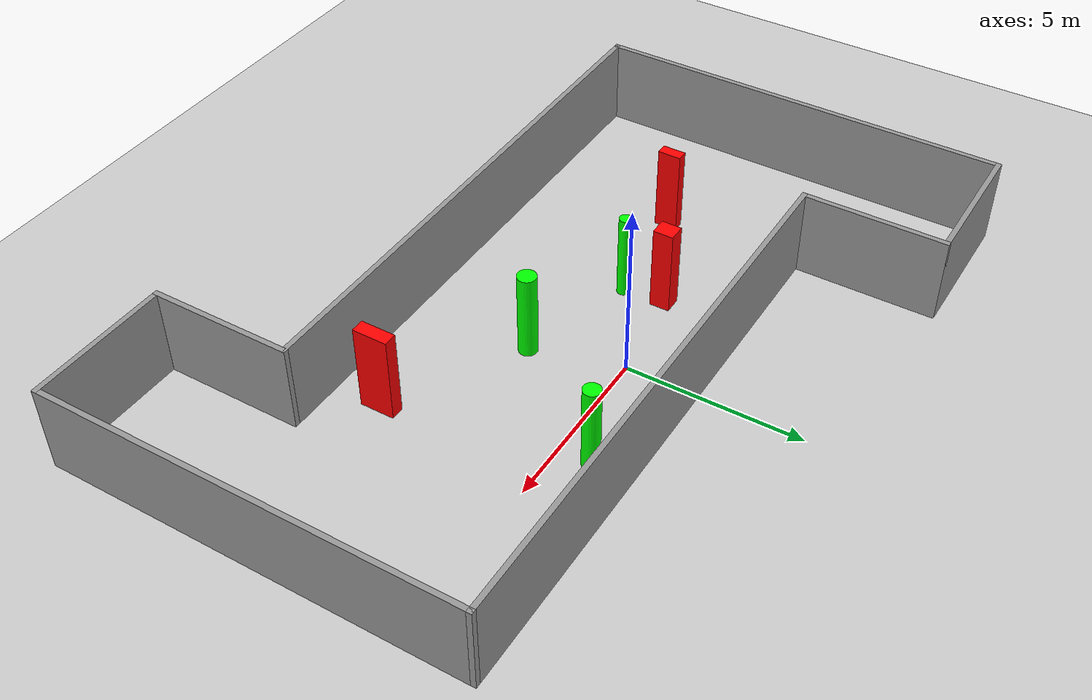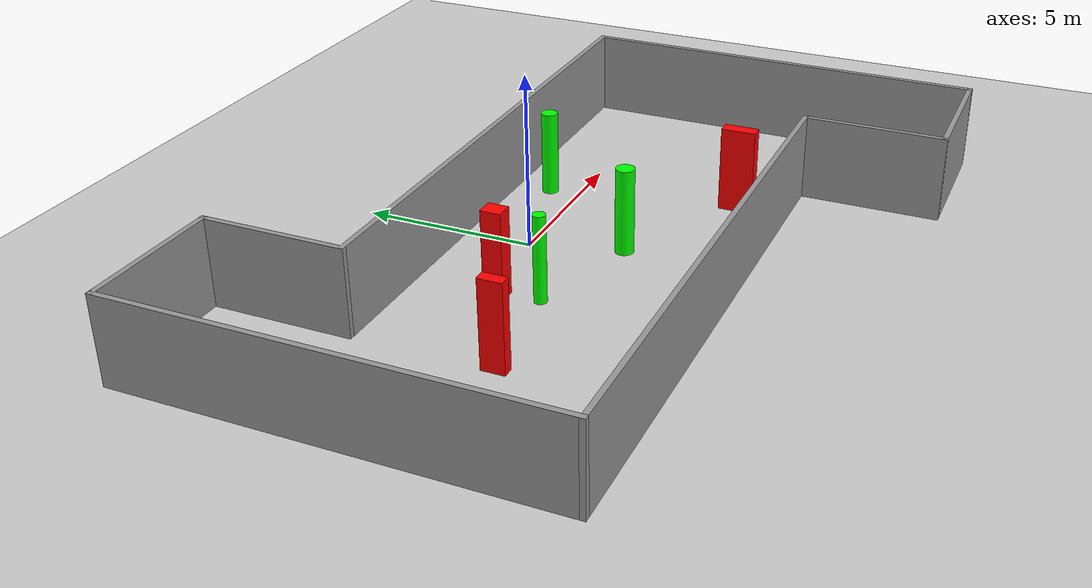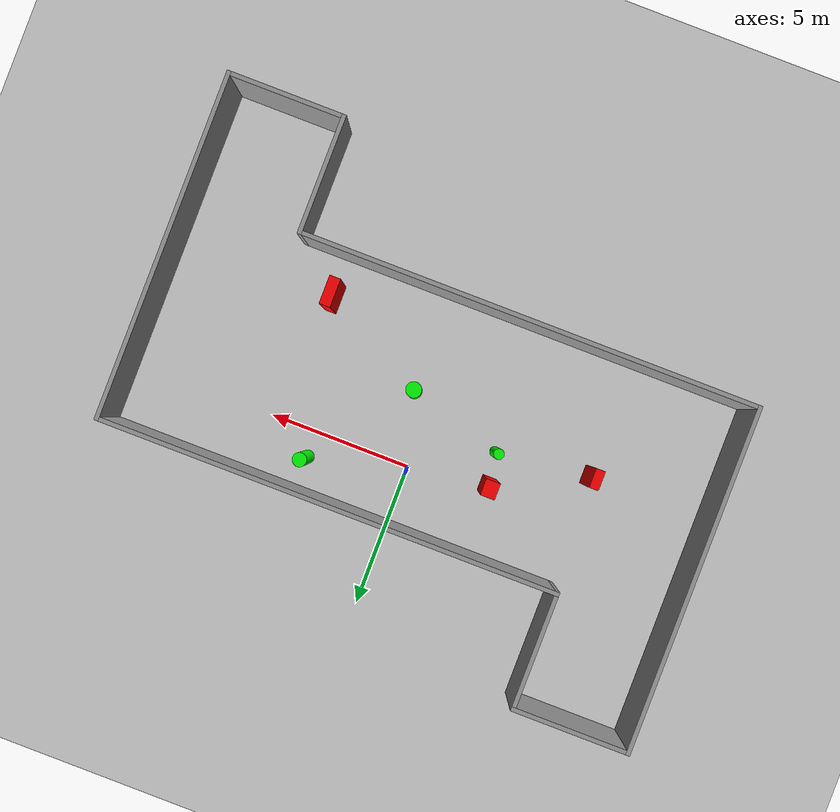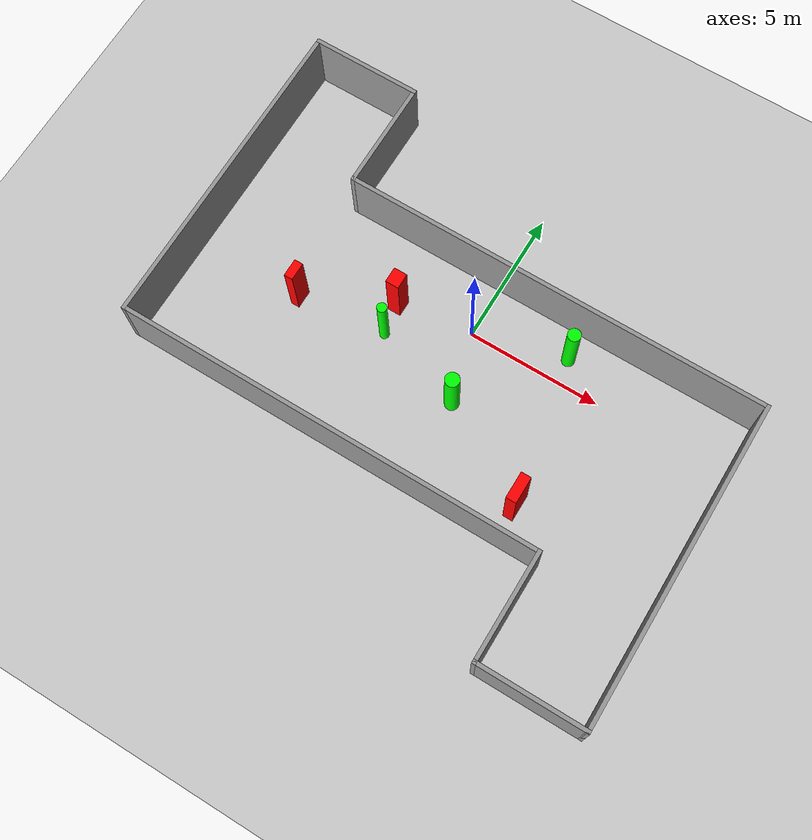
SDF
<sdf version="1.7">
 <world name="default">
  <light name="sun" type="directional">
   <pose>0 0 10 0 -0 0</pose>
   <diffuse>0.8 0.8 0.8 1</diffuse>
   <specular>0.2 0.2 0.2 1</specular>
   <attenuation>
    <range>1000</range>
    <constant>0.9</constant>
    <linear>0.01</linear>
    <quadratic>0.001</quadratic>
   </attenuation>
   <direction>-0.5 0.1 -0.9</direction>
   <spot><inner_angle>0</inner_angle><outer_angle>0</outer_angle><falloff>0</falloff></spot>
  </light>
  <model name="ground_plane">
   <static>1</static>
   <link name="link">
    <collision name="collision">
     <geometry><plane><normal>0 0 1</normal><size>100 100</size></plane></geometry>
     <surface>
      <contact><collide_bitmask>65535</collide_bitmask></contact>
      <friction><ode><mu>100</mu><mu2>50</mu2></ode></friction>
     </surface>
    </collision>
    <visual name="visual">
     <cast_shadows>0</cast_shadows>
     <geometry><plane><normal>0 0 1</normal><size>100 100</size></plane></geometry>
     <material>
      <script><uri>file://media/materials/scripts/gazebo.material</uri><name>Gazebo/Grey</name></script>
     </material>
    </visual>
   </link>
  </model>
  <gravity>0 0 -9.8</gravity>
  <magnetic_field>6e-06 2.3e-05 -4.2e-05</magnetic_field>
  <atmosphere type="adiabatic"/>
  <physics type="ode">
   <max_step_size>0.001</max_step_size>
   <real_time_factor>1</real_time_factor>
   <real_time_update_rate>1000</real_time_update_rate>
  </physics>
  <scene><ambient>0.4 0.4 0.4 1</ambient><background>0.7 0.7 0.7 1</background><shadows>1</shadows></scene>
  <spherical_coordinates>
   <surface_model>EARTH_WGS84</surface_model>
   <latitude_deg>0</latitude_deg>
   <longitude_deg>0</longitude_deg>
   <elevation>0</elevation>
   <heading_deg>0</heading_deg>
  </spherical_coordinates>
  <model name="my_base_walls">
   <link name="Wall_13">
    <collision name="Wall_13_Collision">
     <geometry><box><size>12.15 0.15 2.5</size></box></geometry>
     <pose>0 0 1.25 0 -0 0</pose>
    </collision>
    <visual name="Wall_13_Visual">
     <pose>0 0 1.25 0 -0 0</pose>
     <geometry><box><size>12.15 0.15 2.5</size></box></geometry>
     <material>
      <script><uri>file://media/materials/scripts/gazebo.material</uri><name>Gazebo/Grey</name></script>
      <ambient>1 1 1 1</ambient>
     </material>
     <meta><layer>0</layer></meta>
    </visual>
    <pose>10 -2 0 0 -0 1.5708</pose>
   </link>
   <link name="Wall_15">
    <collision name="Wall_15_Collision">
     <geometry><box><size>16.15 0.15 2.5</size></box></geometry>
     <pose>0 0 1.25 0 -0 0</pose>
    </collision>
    <visual name="Wall_15_Visual">
     <pose>0 0 1.25 0 -0 0</pose>
     <geometry><box><size>16.15 0.15 2.5</size></box></geometry>
     <material>
      <script><uri>file://media/materials/scripts/gazebo.material</uri><name>Gazebo/Grey</name></script>
      <ambient>1 1 1 1</ambient>
     </material>
     <meta><layer>0</layer></meta>
    </visual>
    <pose>2 4 0 0 -0 3.14159</pose>
   </link>
   <link name="Wall_17">
    <collision name="Wall_17_Collision">
     <geometry><box><size>4.15 0.15 2.5</size></box></geometry>
     <pose>0 0 1.25 0 -0 0</pose>
    </collision>
    <visual name="Wall_17_Visual">
     <pose>0 0 1.25 0 -0 0</pose>
     <geometry><box><size>4.15 0.15 2.5</size></box></geometry>
     <material>
      <script><uri>file://media/materials/scripts/gazebo.material</uri><name>Gazebo/Grey</name></script>
      <ambient>1 1 1 1</ambient>
     </material>
     <meta><layer>0</layer></meta>
    </visual>
    <pose>6 -6 0 0 -0 -1.5708</pose>
   </link>
   <link name="Wall_19">
    <collision name="Wall_19_Collision">
     <geometry><box><size>12.15 0.15 2.5</size></box></geometry>
     <pose>0 0 1.25 0 -0 0</pose>
    </collision>
    <visual name="Wall_19_Visual">
     <pose>0 0 1.25 0 -0 0</pose>
     <geometry><box><size>12.15 0.15 2.5</size></box></geometry>
     <material>
      <script><uri>file://media/materials/scripts/gazebo.material</uri><name>Gazebo/Grey</name></script>
      <ambient>1 1 1 1</ambient>
     </material>
     <meta><layer>0</layer></meta>
    </visual>
    <pose>-10 2 0 0 -0 1.5708</pose>
   </link>
   <link name="Wall_21">
    <collision name="Wall_21_Collision">
     <geometry><box><size>4.15 0.15 2.5</size></box></geometry>
     <pose>0 0 1.25 0 -0 0</pose>
    </collision>
    <visual name="Wall_21_Visual">
     <pose>0 0 1.25 0 -0 0</pose>
     <geometry><box><size>4.15 0.15 2.5</size></box></geometry>
     <material>
      <script><uri>file://media/materials/scripts/gazebo.material</uri><name>Gazebo/Grey</name></script>
      <ambient>1 1 1 1</ambient>
     </material>
     <meta><layer>0</layer></meta>
    </visual>
    <pose>-8 8 0 0 -0 0</pose>
   </link>
   <link name="Wall_23">
    <collision name="Wall_23_Collision">
     <geometry><box><size>4.15 0.15 2.5</size></box></geometry>
     <pose>0 0 1.25 0 -0 0</pose>
    </collision>
    <visual name="Wall_23_Visual">
     <pose>0 0 1.25 0 -0 0</pose>
     <geometry><box><size>4.15 0.15 2.5</size></box></geometry>
     <material>
      <script><uri>file://media/materials/scripts/gazebo.material</uri><name>Gazebo/Grey</name></script>
      <ambient>1 1 1 1</ambient>
     </material>
     <meta><layer>0</layer></meta>
    </visual>
    <pose>-6 6 0 0 -0 -1.5708</pose>
   </link>
   <link name="Wall_25">
    <collision name="Wall_25_Collision">
     <geometry><box><size>4.15 0.15 2.5</size></box></geometry>
     <pose>0 0 1.25 0 -0 0</pose>
    </collision>
    <visual name="Wall_25_Visual">
     <pose>0 0 1.25 0 -0 0</pose>
     <geometry><box><size>4.15 0.15 2.5</size></box></geometry>
     <material>
      <script><uri>file://media/materials/scripts/gazebo.material</uri><name>Gazebo/Grey</name></script>
      <ambient>1 1 1 1</ambient>
     </material>
     <meta><layer>0</layer></meta>
    </visual>
    <pose>8 -8 0 0 -0 0</pose>
   </link>
   <link name="Wall_9">
    <collision name="Wall_9_Collision">
     <geometry><box><size>16.15 0.15 2.5</size></box></geometry>
     <pose>0 0 1.25 0 -0 0</pose>
    </collision>
    <visual name="Wall_9_Visual">
     <pose>0 0 1.25 0 -0 0</pose>
     <geometry><box><size>16.15 0.15 2.5</size></box></geometry>
     <material>
      <script><uri>file://media/materials/scripts/gazebo.material</uri><name>Gazebo/Grey</name></script>
      <ambient>1 1 1 1</ambient>
     </material>
     <meta><layer>0</layer></meta>
    </visual>
    <pose>-2 -4 0 0 -0 3.14159</pose>
   </link>
   <static>1</static>
   <pose>-0 -2 0 0 -0 0</pose>
  </model>
  <model name="cylinder1">
   <static>1</static>
   <link name="link">
    <inertial>
     <mass>1</mass>
     <inertia><ixx>0.5</ixx><ixy>0</ixy><ixz>0</ixz><iyy>0.5</iyy><iyz>0</iyz><izz>1</izz></inertia>
    </inertial>
    <collision name="collision">
     <geometry><cylinder><radius>0.26757906057436226</radius><length>2.5</length></cylinder></geometry>
    </collision>
    <visual name="visual">
     <geometry><cylinder><radius>0.26757906057436226</radius><length>2.5</length></cylinder></geometry>
     <material>
      <ambient>0 1 0 1</ambient>
      <diffuse>0 1 0 1</diffuse>
      <specular>0.1 0.1 0.1 1</specular>
      <emissive>0 0 0 0</emissive>
     </material>
    </visual>
   </link>
   <pose>0.7140571024989946 -2.5343189493040335 1.25 0 0 0</pose>
  </model>
  <model name="cylinder2">
   <static>1</static>
   <link name="link">
    <inertial>
     <mass>1</mass>
     <inertia><ixx>0.5</ixx><ixy>0</ixy><ixz>0</ixz><iyy>0.5</iyy><iyz>0</iyz><izz>1</izz></inertia>
    </inertial>
    <collision name="collision">
     <geometry><cylinder><radius>0.17889579892080126</radius><length>2.5</length></cylinder></geometry>
    </collision>
    <visual name="visual">
     <geometry><cylinder><radius>0.17889579892080126</radius><length>2.5</length></cylinder></geometry>
     <material>
      <ambient>0 1 0 1</ambient>
      <diffuse>0 1 0 1</diffuse>
      <specular>0.1 0.1 0.1 1</specular>
      <emissive>0 0 0 0</emissive>
     </material>
    </visual>
   </link>
   <pose>-2.615876499325984 -1.5695713611591993 1.25 0 0 0</pose>
  </model>
  <model name="cylinder3">
   <static>1</static>
   <link name="link">
    <inertial>
     <mass>1</mass>
     <inertia><ixx>0.5</ixx><ixy>0</ixy><ixz>0</ixz><iyy>0.5</iyy><iyz>0</iyz><izz>1</izz></inertia>
    </inertial>
    <collision name="collision">
     <geometry><cylinder><radius>0.23992252624080265</radius><length>2.5</length></cylinder></geometry>
    </collision>
    <visual name="visual">
     <geometry><cylinder><radius>0.23992252624080265</radius><length>2.5</length></cylinder></geometry>
     <material>
      <ambient>0 1 0 1</ambient>
      <diffuse>0 1 0 1</diffuse>
      <specular>0.1 0.1 0.1 1</specular>
      <emissive>0 0 0 0</emissive>
     </material>
    </visual>
   </link>
   <pose>3.3686763731999605 0.9063511143513532 1.25 0 0 0</pose>
  </model>
  <model name="box1">
   <static>1</static>
   <link name="link">
    <inertial>
     <mass>1</mass>
     <inertia><ixx>0.083</ixx><ixy>0</ixy><ixz>0</ixz><iyy>0.083</iyy><iyz>0</iyz><izz>0.083</izz></inertia>
    </inertial>
    <collision name="collision">
     <geometry><box><size>0.38135992021972387 0.9877265069808152 2.5</size></box></geometry>
    </collision>
    <visual name="visual">
     <geometry><box><size>0.38135992021972387 0.9877265069808152 2.5</size></box></geometry>
     <material>
      <ambient>1 0 0 1</ambient>
      <diffuse>1 0 0 1</diffuse>
      <specular>0.1 0.1 0.1 1</specular>
      <emissive>0 0 0 0</emissive>
     </material>
    </visual>
    <sensor name="my_contact" type="contact">
     <contact><collision>box_collision</collision><topic>__default_topic__</topic></contact>
    </sensor>
   </link>
   <pose>4.398810325833701 -4.549918125825648 1.25 0 0 0</pose>
  </model>
  <model name="box2">
   <static>1</static>
   <link name="link">
    <inertial>
     <mass>1</mass>
     <inertia><ixx>0.083</ixx><ixy>0</ixy><ixz>0</ixz><iyy>0.083</iyy><iyz>0</iyz><izz>0.083</izz></inertia>
    </inertial>
    <collision name="collision">
     <geometry><box><size>0.3201932721413065 0.6650310356002732 2.5</size></box></geometry>
    </collision>
    <visual name="visual">
     <geometry><box><size>0.3201932721413065 0.6650310356002732 2.5</size></box></geometry>
     <material>
      <ambient>1 0 0 1</ambient>
      <diffuse>1 0 0 1</diffuse>
      <specular>0.1 0.1 0.1 1</specular>
      <emissive>0 0 0 0</emissive>
     </material>
    </visual>
    <sensor name="my_contact" type="contact">
     <contact><collision>box_collision</collision><topic>__default_topic__</topic></contact>
    </sensor>
   </link>
   <pose>-5.894107031654415 -1.9404114999608346 1.25 0 0 0</pose>
  </model>
  <model name="box3">
   <static>1</static>
   <link name="link">
    <inertial>
     <mass>1</mass>
     <inertia><ixx>0.083</ixx><ixy>0</ixy><ixz>0</ixz><iyy>0.083</iyy><iyz>0</iyz><izz>0.083</izz></inertia>
    </inertial>
    <collision name="collision">
     <geometry><box><size>0.49469071461140174 0.573245854907753 2.5</size></box></geometry>
    </collision>
    <visual name="visual">
     <geometry><box><size>0.49469071461140174 0.573245854907753 2.5</size></box></geometry>
     <material>
      <ambient>1 0 0 1</ambient>
      <diffuse>1 0 0 1</diffuse>
      <specular>0.1 0.1 0.1 1</specular>
      <emissive>0 0 0 0</emissive>
     </material>
    </visual>
    <sensor name="my_contact" type="contact">
     <contact><collision>box_collision</collision><topic>__default_topic__</topic></contact>
    </sensor>
   </link>
   <pose>-2.7655060377256273 -0.4085745638401779 1.25 0 0 0</pose>
  </model>
 </world>
</sdf>
